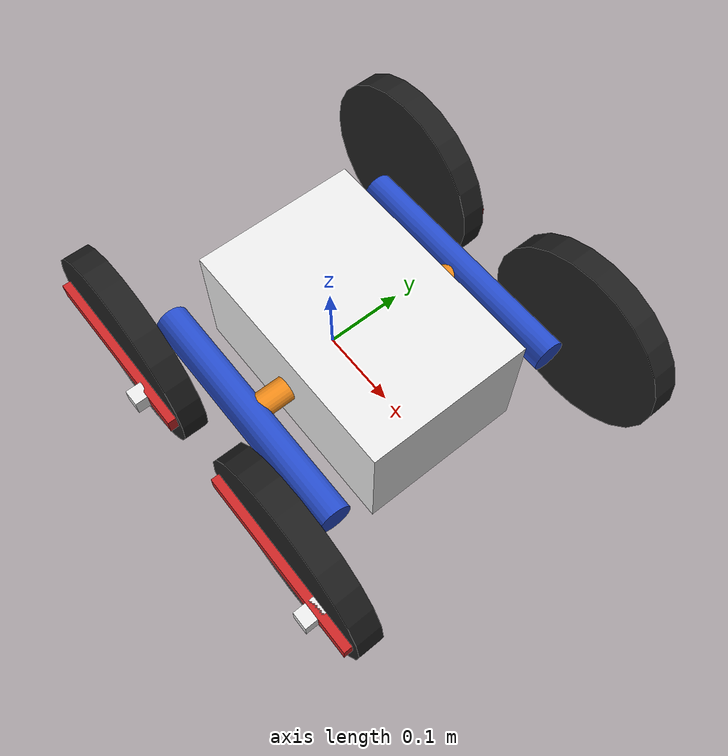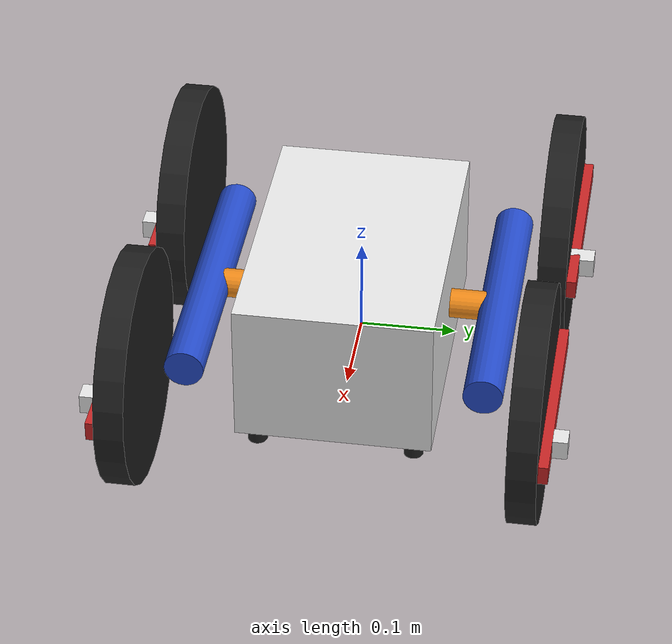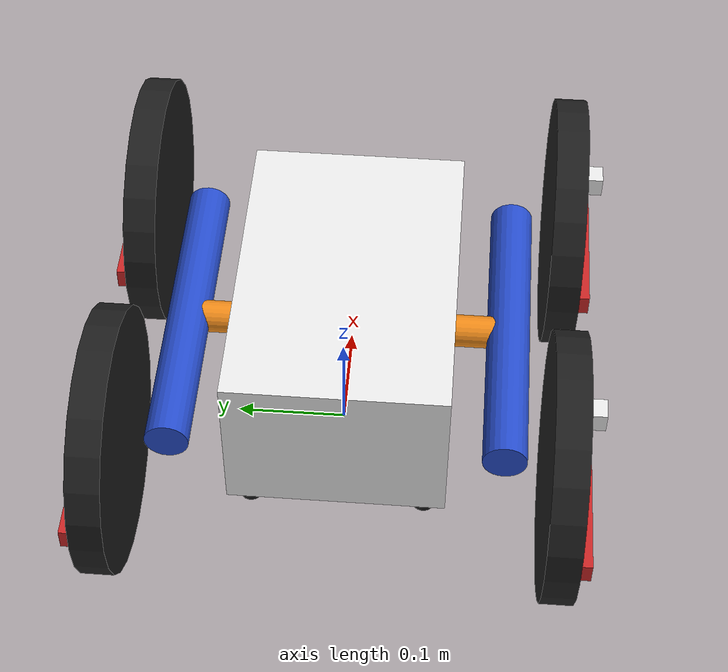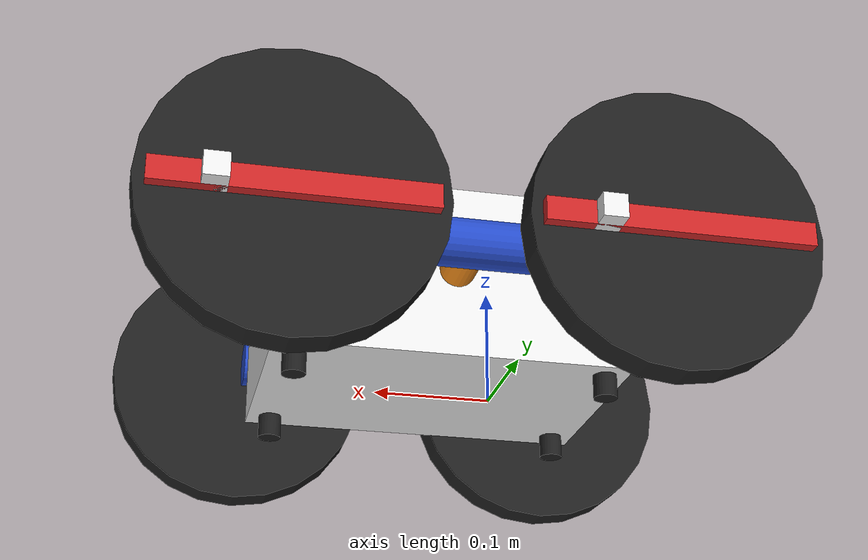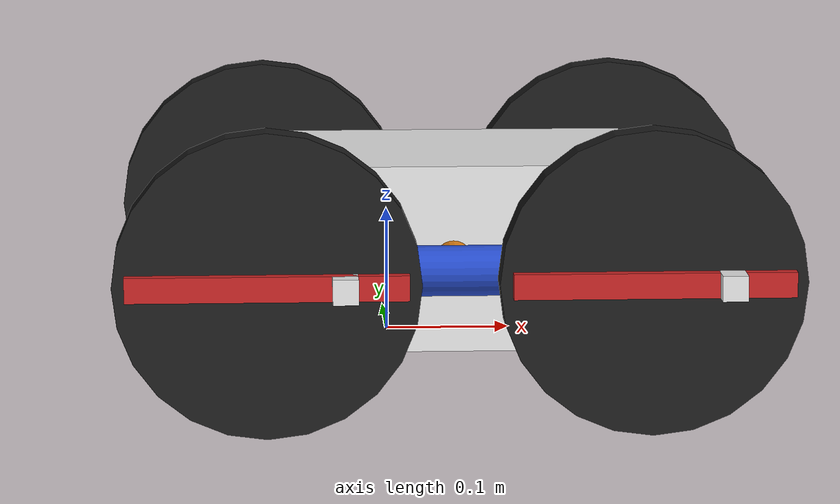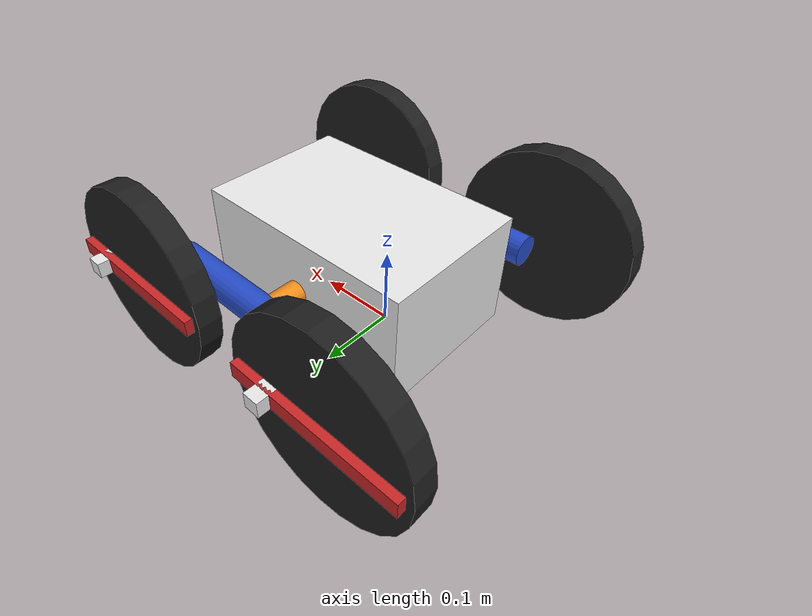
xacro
<?xml version="1.0"?>
<robot xmlns:xacro="http://www.ros.org/wiki/xacro">

  <xacro:include filename="inertias.xacro" />

  <!-- ── BASE LINKS ────────────────────────────────────────────────────────── -->
  <link name="base_link"></link>

  <joint name="base_footprint_joint" type="fixed">
    <parent link="base_link"/>
    <child link="base_footprint"/>
    <origin xyz="0 0 0" rpy="0 0 0"/>
  </joint>

  <link name="base_footprint"></link>

  <joint name="chassis_joint" type="fixed">
    <parent link="base_link"/>
    <child link="chassis"/>
    <origin xyz="-0.1 0 0"/>
  </joint>

  <link name="chassis">
    <visual>
      <origin xyz="0.15 0 0.075"/>
      <geometry>
        <box size="0.3 0.2 0.15"/>
      </geometry>
      <material name="white"/>
    </visual>
    <collision>
      <origin xyz="0.15 0 0.075"/>
      <geometry>
        <box size="0.3 0.2 0.15"/>
      </geometry>
    </collision>
    <xacro:inertial_box mass="1.0" x="0.3" y="0.2" z="0.15">
      <origin xyz="0.15 0 0.075" rpy="0 0 0"/>
    </xacro:inertial_box>
  </link>

  <!-- ── LANDING GEAR ────────────────────────────────────────────────────────── -->
  <xacro:macro name="landing_gear_leg" params="name x y">
    <joint name="landing_gear_${name}_joint" type="fixed">
      <parent link="chassis"/>
      <child link="landing_gear_${name}"/>
      <origin xyz="${x} ${y} -0.01" rpy="0 0 0"/>
    </joint>

    <link name="landing_gear_${name}">
      <visual>
        <origin xyz="0 0 0" rpy="0 0 0"/>
        <geometry><cylinder radius="0.01" length="0.02"/></geometry>
        <material name="black"/>
      </visual>
      <collision>
        <origin xyz="0 0 0" rpy="0 0 0"/>
        <geometry><cylinder radius="0.01" length="0.02"/></geometry>
      </collision>
      <xacro:inertial_cylinder mass="0.05" length="0.02" radius="0.01">
        <origin xyz="0 0 0" rpy="0 0 0"/>
      </xacro:inertial_cylinder>
    </link>
  </xacro:macro>

  <xacro:landing_gear_leg name="front_left" x="0.28" y="0.08" />
  <xacro:landing_gear_leg name="front_right" x="0.28" y="-0.08" />
  <xacro:landing_gear_leg name="rear_left" x="0.02" y="0.08" />
  <xacro:landing_gear_leg name="rear_right" x="0.02" y="-0.08" />

  <!-- ── LEFT MORPHING MECHANISM ────────────────────────────────────────────── -->
  <!-- Actuator pushes left boom outwards. Servo rolls it 90 degrees to point wheels UP. -->
  <joint name="linear_actuator_1_joint" type="prismatic">
    <parent link="chassis"/>
    <child link="left_extension_arm"/>
    <origin xyz="0.15 0.1 0.075" rpy="0 0 0"/>
    <axis xyz="0 1 0"/>
    <limit lower="0" upper="0.1" effort="10" velocity="0.05"/>
  </joint>

  <link name="left_extension_arm">
    <visual>
      <origin xyz="0 0.025 0" rpy="1.5708 0 0"/>
      <geometry><cylinder length="0.05" radius="0.015"/></geometry>
      <material name="orange"/>
    </visual>
    <xacro:inertial_cylinder mass="0.1" length="0.05" radius="0.015">
      <origin xyz="0 0.025 0" rpy="1.5708 0 0"/>
    </xacro:inertial_cylinder>
  </link>

  <joint name="morph_servo_1_joint" type="revolute">
    <parent link="left_extension_arm"/>
    <child link="left_boom"/>
    <origin xyz="0 0.05 0" rpy="0 0 0"/>
    <axis xyz="1 0 0"/>
    <limit lower="0" upper="1.5708" effort="10" velocity="1.0"/>
  </joint>

  <link name="left_boom">
    <visual>
      <origin xyz="0 0 0" rpy="0 1.5708 0"/>
      <geometry><cylinder length="0.3" radius="0.02"/></geometry>
      <material name="blue"/>
    </visual>
    <xacro:inertial_cylinder mass="0.2" length="0.3" radius="0.02">
      <origin xyz="0 0 0" rpy="0 1.5708 0"/>
    </xacro:inertial_cylinder>
  </link>

  <!-- ── RIGHT MORPHING MECHANISM ───────────────────────────────────────────── -->

  <joint name="linear_actuator_2_joint" type="prismatic">
    <parent link="chassis"/>
    <child link="right_extension_arm"/>
    <origin xyz="0.15 -0.1 0.075" rpy="0 0 0"/>
    <axis xyz="0 -1 0"/>
    <limit lower="0" upper="0.1" effort="10" velocity="0.05"/>
  </joint>

  <link name="right_extension_arm">
    <visual>
      <origin xyz="0 -0.025 0" rpy="1.5708 0 0"/>
      <geometry><cylinder length="0.05" radius="0.015"/></geometry>
      <material name="orange"/>
    </visual>
    <xacro:inertial_cylinder mass="0.1" length="0.05" radius="0.015">
      <origin xyz="0 -0.025 0" rpy="1.5708 0 0"/>
    </xacro:inertial_cylinder>
  </link>

  <joint name="morph_servo_2_joint" type="revolute">
    <parent link="right_extension_arm"/>
    <child link="right_boom"/>
    <origin xyz="0 -0.05 0" rpy="0 0 0"/>
    <axis xyz="-1 0 0"/>
    <limit lower="0" upper="1.5708" effort="10" velocity="1.0"/>
  </joint>

  <link name="right_boom">
    <visual>
      <origin xyz="0 0 0" rpy="0 1.5708 0"/>
      <geometry><cylinder length="0.3" radius="0.02"/></geometry>
      <material name="blue"/>
    </visual>
    <xacro:inertial_cylinder mass="0.2" length="0.3" radius="0.02">
      <origin xyz="0 0 0" rpy="0 1.5708 0"/>
    </xacro:inertial_cylinder>
  </link>

  <!-- ── WHEELS & PROPELLOR GUARDS (R=0.12) ────────────────────────────────── -->
  <!-- We use continuous joints to permit driving. -->

  <joint name="front_left_wheel_joint" type="continuous">
    <parent link="left_boom"/>
    <child link="front_left_wheel"/>
    <origin xyz="0.15 0.05 0" rpy="-1.5708 0 0"/>
    <axis xyz="0 0 1"/>
  </joint>

  <link name="front_left_wheel">
    <visual>
      <geometry><cylinder length="0.03" radius="0.12"/></geometry>
      <material name="black"/>
    </visual>
    <!-- Spoke to make rotation visible -->
    <visual>
      <origin xyz="0.06 0 0.02" rpy="0 0 0"/>
      <geometry><box size="0.02 0.02 0.04"/></geometry>
      <material name="white"/>
    </visual>
    <collision>
      <geometry><cylinder length="0.03" radius="0.12"/></geometry>
    </collision>
    <xacro:inertial_cylinder mass="0.1" length="0.03" radius="0.12">
      <origin xyz="0 0 0" rpy="0 0 0"/>
    </xacro:inertial_cylinder>
  </link>

  <joint name="rear_left_wheel_joint" type="continuous">
    <parent link="left_boom"/>
    <child link="rear_left_wheel"/>
    <origin xyz="-0.15 0.05 0" rpy="-1.5708 0 0"/>
    <axis xyz="0 0 1"/>
  </joint>

  <link name="rear_left_wheel">
    <visual>
      <geometry><cylinder length="0.03" radius="0.12"/></geometry>
      <material name="black"/>
    </visual>
    <!-- Spoke to make rotation visible -->
    <visual>
      <origin xyz="0.06 0 0.02" rpy="0 0 0"/>
      <geometry><box size="0.02 0.02 0.04"/></geometry>
      <material name="white"/>
    </visual>
    <collision>
      <geometry><cylinder length="0.03" radius="0.12"/></geometry>
    </collision>
    <xacro:inertial_cylinder mass="0.1" length="0.03" radius="0.12">
      <origin xyz="0 0 0" rpy="0 0 0"/>
    </xacro:inertial_cylinder>
  </link>

  <joint name="front_right_wheel_joint" type="continuous">
    <parent link="right_boom"/>
    <child link="front_right_wheel"/>
    <origin xyz="0.15 -0.05 0" rpy="1.5708 0 0"/>
    <axis xyz="0 0 -1"/>
  </joint>

  <link name="front_right_wheel">
    <visual>
      <geometry><cylinder length="0.03" radius="0.12"/></geometry>
      <material name="black"/>
    </visual>
    <!-- Spoke to make rotation visible -->
    <visual>
      <origin xyz="0.06 0 0.02" rpy="0 0 0"/>
      <geometry><box size="0.02 0.02 0.04"/></geometry>
      <material name="white"/>
    </visual>
    <collision>
      <geometry><cylinder length="0.03" radius="0.12"/></geometry>
    </collision>
    <xacro:inertial_cylinder mass="0.1" length="0.03" radius="0.12">
      <origin xyz="0 0 0" rpy="0 0 0"/>
    </xacro:inertial_cylinder>
  </link>

  <joint name="rear_right_wheel_joint" type="continuous">
    <parent link="right_boom"/>
    <child link="rear_right_wheel"/>
    <origin xyz="-0.15 -0.05 0" rpy="1.5708 0 0"/>
    <axis xyz="0 0 -1"/>
  </joint>

  <link name="rear_right_wheel">
    <visual>
      <geometry><cylinder length="0.03" radius="0.12"/></geometry>
      <material name="black"/>
    </visual>
    <!-- Spoke to make rotation visible -->
    <visual>
      <origin xyz="0.06 0 0.02" rpy="0 0 0"/>
      <geometry><box size="0.02 0.02 0.04"/></geometry>
      <material name="white"/>
    </visual>
    <collision>
      <geometry><cylinder length="0.03" radius="0.12"/></geometry>
    </collision>
    <xacro:inertial_cylinder mass="0.1" length="0.03" radius="0.12">
      <origin xyz="0 0 0" rpy="0 0 0"/>
    </xacro:inertial_cylinder>
  </link>

  <!-- Gazebo Friction tags for wheels -->
  <gazebo reference="front_left_wheel">
    <mu1>1.0</mu1>
    <mu2>1.0</mu2>
  </gazebo>
  <gazebo reference="front_right_wheel">
    <mu1>1.0</mu1>
    <mu2>1.0</mu2>
  </gazebo>
  <gazebo reference="rear_left_wheel">
    <mu1>1.0</mu1>
    <mu2>1.0</mu2>
  </gazebo>
  <gazebo reference="rear_right_wheel">
    <mu1>1.0</mu1>
    <mu2>1.0</mu2>
  </gazebo>

  <!-- ── ROTORS ────────────────────────────────────────────────────────────── -->
  <!-- Rotors attach directly to the boom frame, avoiding rotation when driving -->

  <xacro:macro name="rotor" params="name parent *origin">
    <joint name="rotor_${name}_joint" type="continuous">
      <parent link="${parent}"/>
      <child link="rotor_${name}"/>
      <xacro:insert_block name="origin"/>
      <axis xyz="0 0 1"/>
    </joint>
    <link name="rotor_${name}">
      <visual>
        <origin xyz="0 0 0.02"/>
        <geometry>
          <box size="0.22 0.02 0.01"/>
        </geometry>
        <material name="red"/>
      </visual>
      <xacro:inertial_box mass="0.05" x="0.22" y="0.02" z="0.01">
        <origin xyz="0 0 0" rpy="0 0 0"/>
      </xacro:inertial_box>
    </link>
  </xacro:macro>

  <xacro:rotor name="front_left" parent="left_boom">
    <origin xyz="0.15 0.05 0" rpy="-1.5708 0 0"/>
  </xacro:rotor>

  <xacro:rotor name="rear_left" parent="left_boom">
    <origin xyz="-0.15 0.05 0" rpy="-1.5708 0 0"/>
  </xacro:rotor>

  <xacro:rotor name="front_right" parent="right_boom">
    <origin xyz="0.15 -0.05 0" rpy="1.5708 0 0"/>
  </xacro:rotor>

  <xacro:rotor name="rear_right" parent="right_boom">
    <origin xyz="-0.15 -0.05 0" rpy="1.5708 0 0"/>
  </xacro:rotor>

</robot>

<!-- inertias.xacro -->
<robot xmlns:xacro="http://www.ros.org/wiki/xacro">

  <!-- Intertia macros for common shapes -->
  <xacro:macro name="inertial_sphere" params="mass radius *origin">
    <inertial>
      <xacro:insert_block name="origin"/>
      <mass value="${mass}" />
      <inertia ixx="${(2/5) * mass * (radius*radius)}" ixy="0.0" ixz="0.0"
               iyy="${(2/5) * mass * (radius*radius)}" iyz="0.0"
               izz="${(2/5) * mass * (radius*radius)}" />
    </inertial>
  </xacro:macro>

  <xacro:macro name="inertial_box" params="mass x y z *origin">
    <inertial>
      <xacro:insert_block name="origin"/>
      <mass value="${mass}" />
      <inertia ixx="${(1/12) * mass * (y*y+z*z)}" ixy="0.0" ixz="0.0"
               iyy="${(1/12) * mass * (x*x+z*z)}" iyz="0.0"
               izz="${(1/12) * mass * (x*x+y*y)}" />
    </inertial>
  </xacro:macro>

  <xacro:macro name="inertial_cylinder" params="mass length radius *origin">
    <inertial>
      <xacro:insert_block name="origin"/>
      <mass value="${mass}" />
      <inertia ixx="${(1/12) * mass * (3*radius*radius + length*length)}" ixy="0.0" ixz="0.0"
               iyy="${(1/12) * mass * (3*radius*radius + length*length)}" iyz="0.0"
               izz="${(1/2) * mass * (radius*radius)}" />
    </inertial>
  </xacro:macro>

</robot>
